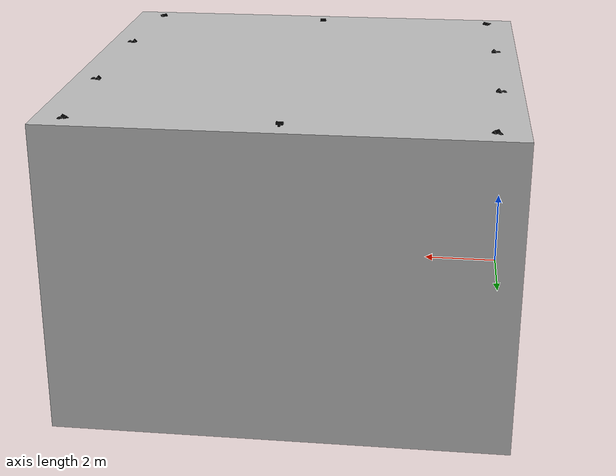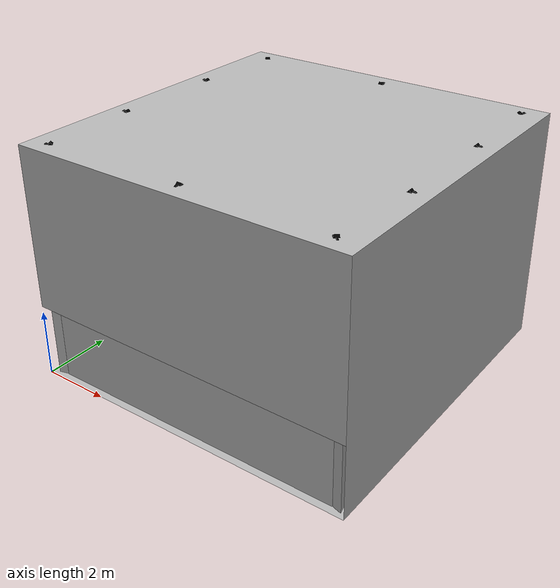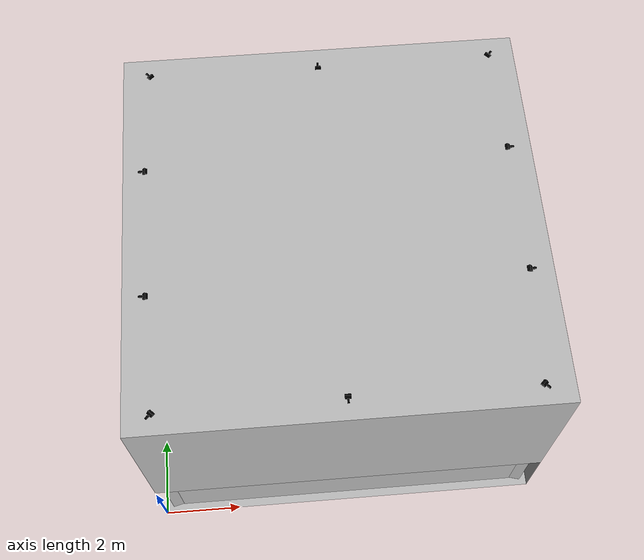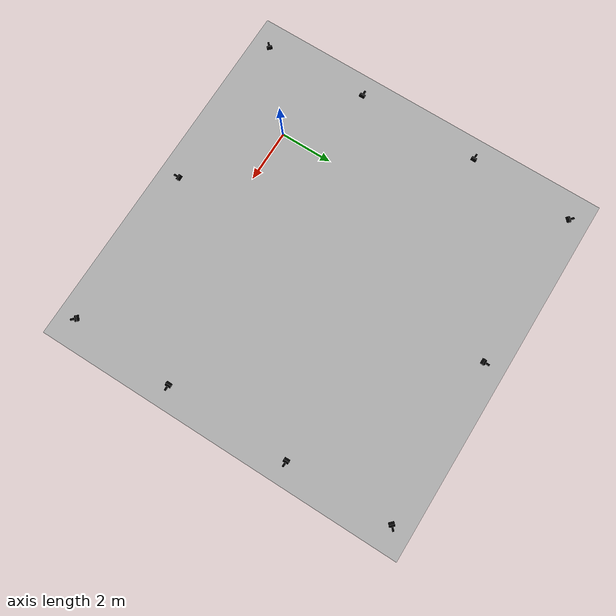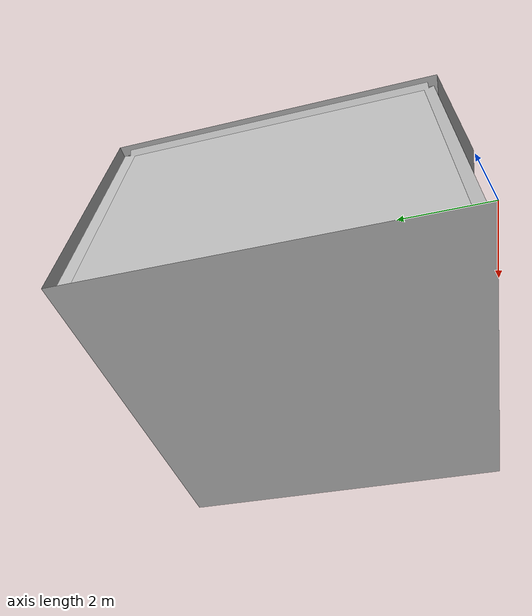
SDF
<?xml version='1.0'?>
<sdf version='1.4'>
  <model name="cyberzoo">
    <static>true</static>
    <pose>0 0 0 0 0 0</pose>

    <link name="cyberzoo">
      <pose>0 0 0.01 0 0 0</pose>
      <visual name="solid">
      <cast_shadows>false</cast_shadows>
        <geometry>
          <mesh>
            <uri>model://cyberzoo2/cyberzoo_solid.dae</uri>
          </mesh>
        </geometry>
      </visual>
      <visual name="poles">
      <cast_shadows>false</cast_shadows>
        <geometry>
          <mesh>
            <uri>model://cyberzoo2/cyberzoo_poles.dae</uri>
          </mesh>
        </geometry>
        <material>
          <script>
            <uri>model://cyberzoo2/cyberzoo_poles</uri>
            <name>Cyberzoo/Poles</name>
          </script>
        </material>
      </visual>
      <visual name="net">
      <cast_shadows>false</cast_shadows>
        <geometry>
          <mesh>
            <uri>model://cyberzoo2/cyberzoo_net.dae</uri>
          </mesh>
        </geometry>
        <material>
          <script>
            <uri>model://cyberzoo2/cyberzoo_net</uri>
            <name>Cyberzoo/Net</name>
          </script>
        </material>
      </visual>
      <visual name="lighting">
      <cast_shadows>false</cast_shadows>
        <geometry>
          <mesh>
            <uri>model://cyberzoo2/cyberzoo_lighting.dae</uri>
          </mesh>
        </geometry>
      </visual>
      <visual name="glow">
      <cast_shadows>false</cast_shadows>
        <geometry>
          <mesh>
            <uri>model://cyberzoo2/cyberzoo_lighting_glow.dae</uri>
          </mesh>
        </geometry>
        <material>
          <script>
            <uri>model://cyberzoo2/cyberzoo_lighting_glow</uri>
            <name>Cyberzoo/Glow</name>
          </script>
        </material>
      </visual>
    </link>

  </model>
</sdf>
